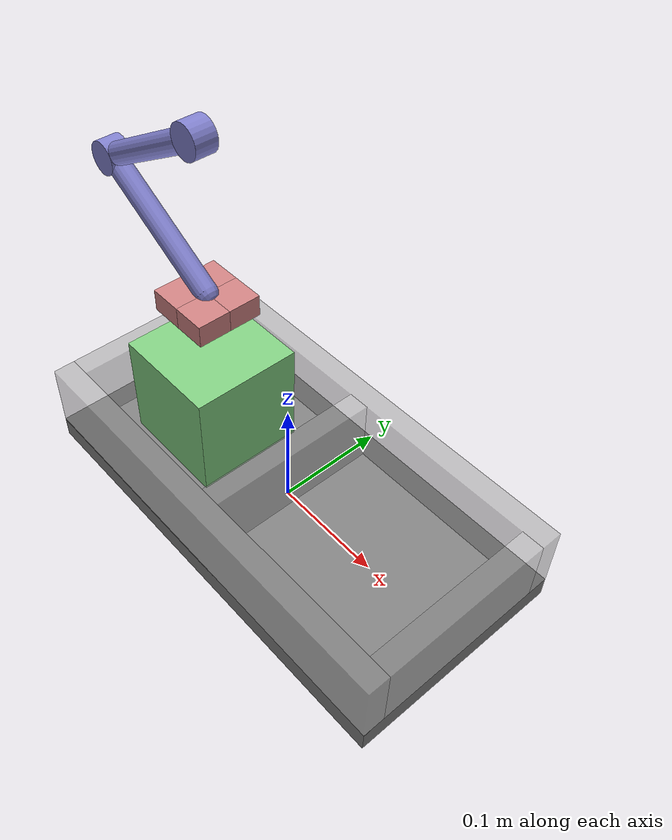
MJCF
<mujoco model="Active adhesion example">
  <!--
    Adding some fluid viscosity to prevent the hanging sphere from jiggling too much.
  -->
  <option viscosity="1"/>

  <size memory="10M"/>

  <visual>
    <headlight diffuse=".2 .2 .2"/>
  </visual>

  <default>
    <joint damping=".3" axis="0 1 0"/>
    <geom type="box" friction=".5"/>
    <default class="wall">
      <geom rgba=".5 .5 .5 .4"/>
    </default>
    <default class="mechanical">
      <geom rgba=".5 .5 .8 1"/>
      <tendon rgba=".5 .5 .8 1"/>
    </default>
    <default class="active_adhesion">
      <geom rgba=".8 .5 .5 1" margin=".01" gap=".01"/>
    </default>
    <default class="object">
      <geom rgba=".5 .8 .5 1" density="100"/>
    </default>
  </default>

  <worldbody>
    <light pos="0.4 -.15 .6" dir="-1 .5 -1" diffuse=".7 .7 .7"/>
    <light pos="-.4 -.15 .6" dir="1 .5 -1" diffuse=".7 .7 .7"/>

    <body name="two crates">
      <joint name="conveyor" type="slide" damping="100" axis="1 0 0"/>
      <geom size=".2 .1 .01" pos="0 0 -.01"/>
      <geom size=".01 .08 .031" pos="-.19 0 .03" class="wall"/>
      <geom size=".01 .08 .031" pos="0  0 .03" class="wall"/>
      <geom size=".01 .08 .031" pos="0.19 0 .03" class="wall"/>
      <geom size="0.2 .01 .031" pos="0 -.09 .03" class="wall"/>
      <geom size="0.2 .01 .031" pos="0 0.09 .03" class="wall"/>
    </body>

    <body name="arm1" pos="-.1 0 .3" childclass="mechanical">
      <joint name="arm1"/>
      <geom type="cylinder" size=".015 .01" zaxis="0 1 0"/>
      <geom type="capsule" size=".01" fromto="0 0 0 -.12 0 -.07"/>
      <body name="arm2" pos="-.12 0 -.07">
        <joint name="arm2"/>
        <geom type="cylinder" size=".015 .01" zaxis="0 1 0"/>
        <geom type="capsule" size=".01" fromto="0 0 0 .12 0 -.07"/>
        <body name="4boxes" pos=".12 0 -.08" childclass="active_adhesion">
          <site name="force_sensor" group="3"/>
          <joint name="arm3" damping=".01" pos="0 -.03 0"/>
          <geom size=".015 .015 .01" pos="0.015 0.015 0"/>
          <geom size=".015 .015 .01" pos="0.015 -.015 0"/>
          <geom size=".015 .015 .01" pos="-.015 0.015 0"/>
          <geom size=".015 .015 .01" pos="-.015 -.015 0"/>
        </body>
      </body>
    </body>

    <body name="box" pos="-.1 0 .05">
      <freejoint/>
      <geom size=".05 .05 .05" class="object"/>
    </body>

  </worldbody>

  <equality>
    <joint joint1="arm1" joint2="arm2" polycoef="0 -.5 0 0 0"/>
    <joint joint1="arm3" joint2="arm1"/>
  </equality>

  <actuator>
    <position name="conveyor" joint="conveyor" ctrlrange="-.2 .2" ctrllimited="true" kp="400"/>
    <position name="arm" joint="arm2" ctrlrange="-.8 1" ctrllimited="true" kp="10"/>
    <adhesion name="adhere_arm" body="4boxes" ctrlrange="0 1" gain="5"/>
  </actuator>

  <sensor>
    <force site="force_sensor"/>
  </sensor>
</mujoco>
